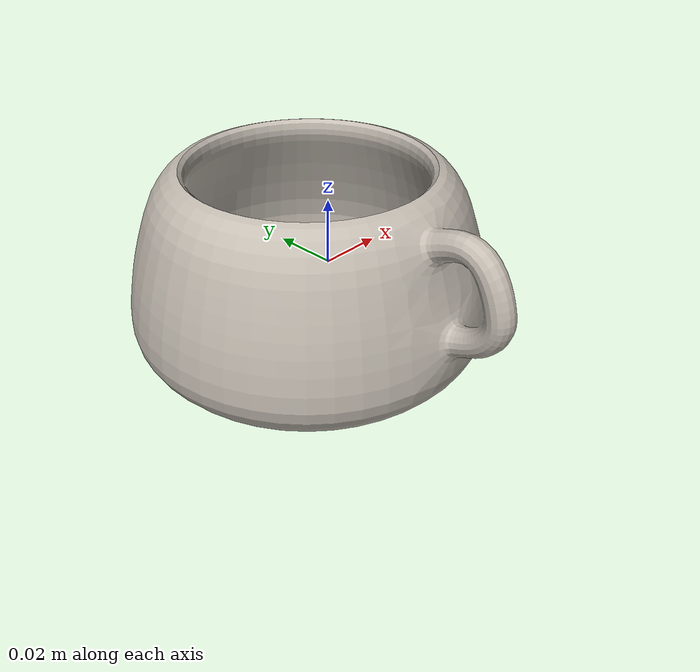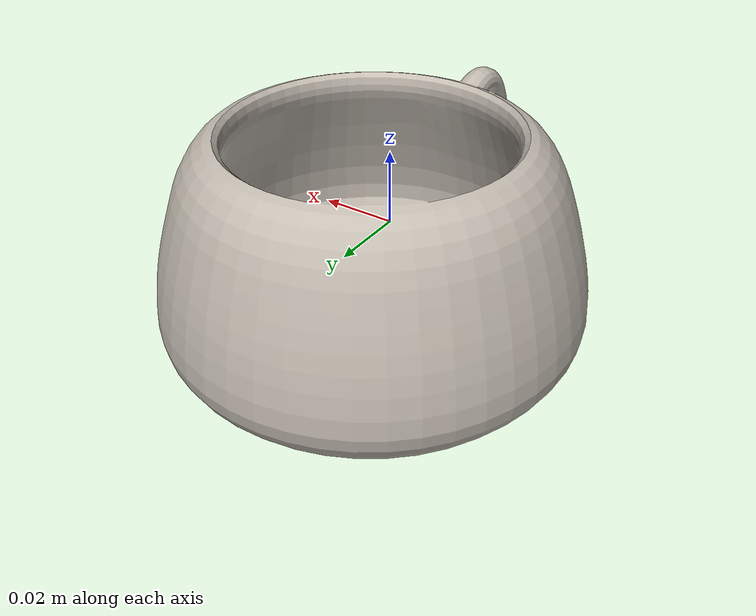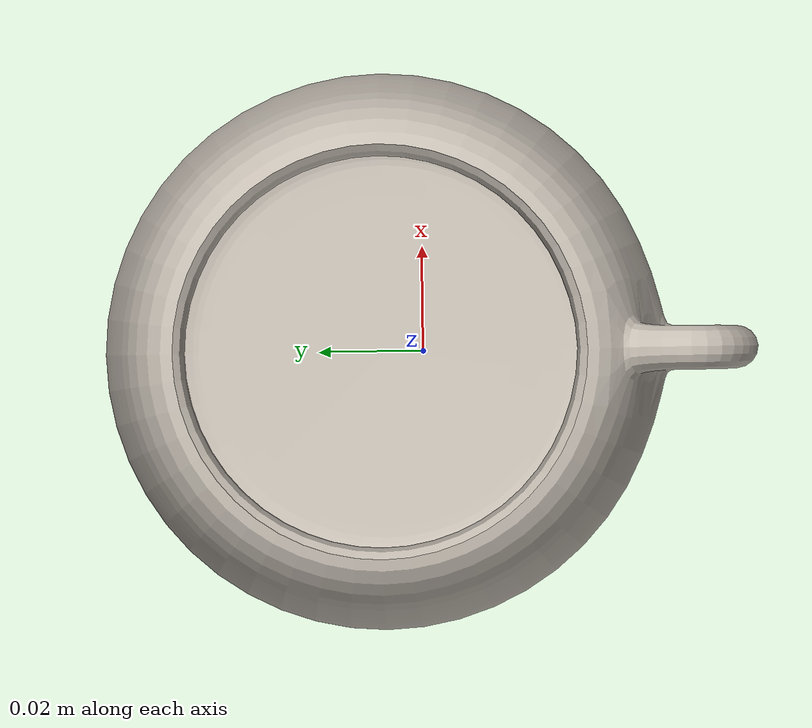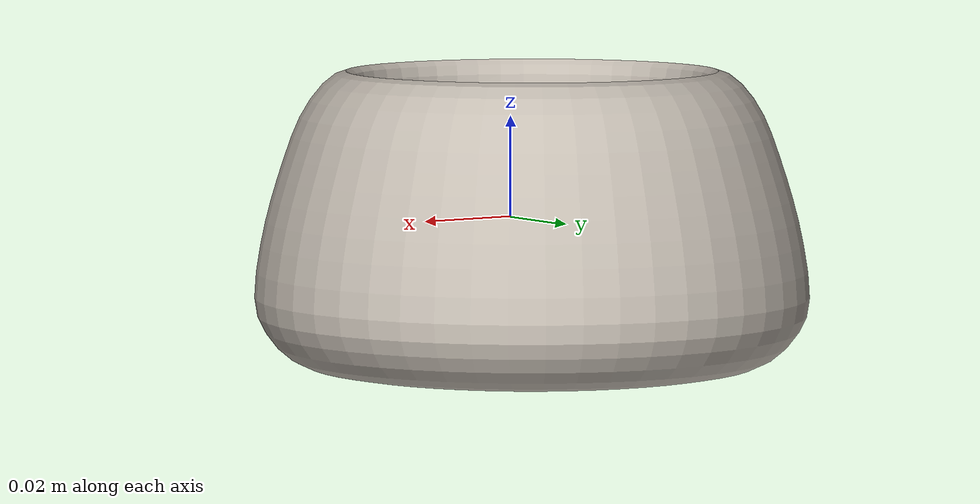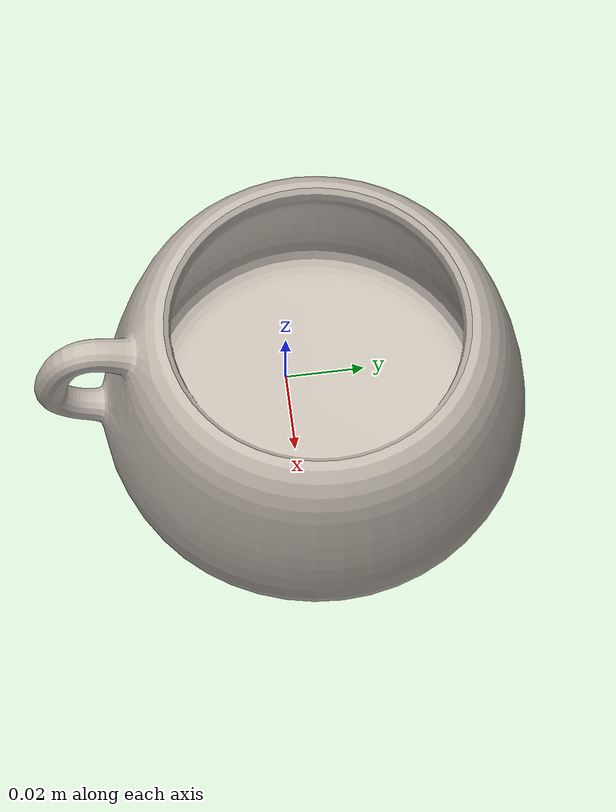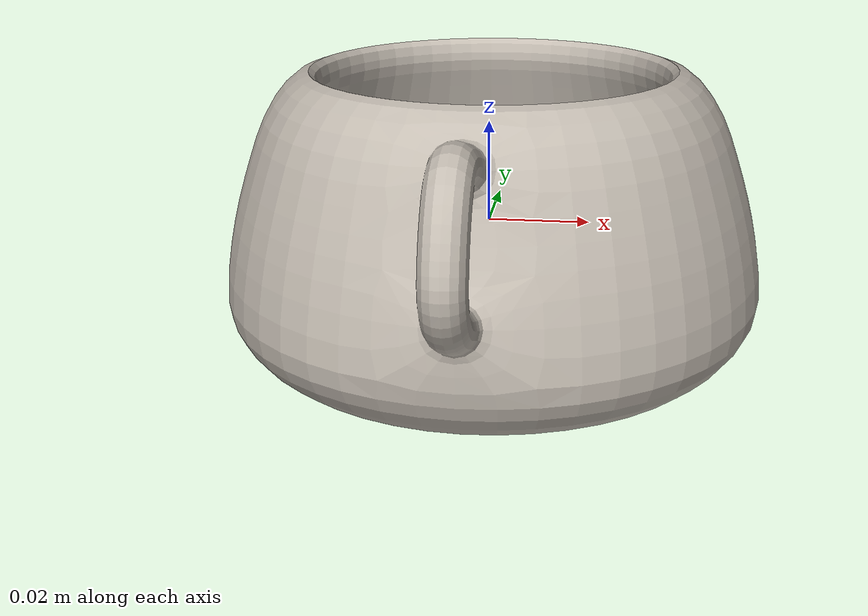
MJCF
<mujoco model="mug_0">
  <asset>
    <mesh file="visual/model_normalized_0.obj" name="mug_0_model_normalized_0_vis" scale="0.125 0.125 0.125" refquat="0.7071067811865475 0.0 0.0 0.7071067811865476" />
    <mesh file="visual/model_normalized_1.obj" name="mug_0_model_normalized_1_vis" scale="0.125 0.125 0.125" refquat="0.7071067811865475 0.0 0.0 0.7071067811865476" />
    <mesh file="collision/model_normalized_collision_22.obj" name="mug_0_model_normalized_collision_22._coll" scale="0.125 0.125 0.125" refquat="0.7071067811865475 0.0 0.0 0.7071067811865476" />
    <mesh file="collision/model_normalized_collision_23.obj" name="mug_0_model_normalized_collision_23._coll" scale="0.125 0.125 0.125" refquat="0.7071067811865475 0.0 0.0 0.7071067811865476" />
    <mesh file="collision/model_normalized_collision_21.obj" name="mug_0_model_normalized_collision_21._coll" scale="0.125 0.125 0.125" refquat="0.7071067811865475 0.0 0.0 0.7071067811865476" />
    <mesh file="collision/model_normalized_collision_20.obj" name="mug_0_model_normalized_collision_20._coll" scale="0.125 0.125 0.125" refquat="0.7071067811865475 0.0 0.0 0.7071067811865476" />
    <mesh file="collision/model_normalized_collision_24.obj" name="mug_0_model_normalized_collision_24._coll" scale="0.125 0.125 0.125" refquat="0.7071067811865475 0.0 0.0 0.7071067811865476" />
    <mesh file="collision/model_normalized_collision_30.obj" name="mug_0_model_normalized_collision_30._coll" scale="0.125 0.125 0.125" refquat="0.7071067811865475 0.0 0.0 0.7071067811865476" />
    <mesh file="collision/model_normalized_collision_18.obj" name="mug_0_model_normalized_collision_18._coll" scale="0.125 0.125 0.125" refquat="0.7071067811865475 0.0 0.0 0.7071067811865476" />
    <mesh file="collision/model_normalized_collision_19.obj" name="mug_0_model_normalized_collision_19._coll" scale="0.125 0.125 0.125" refquat="0.7071067811865475 0.0 0.0 0.7071067811865476" />
    <mesh file="collision/model_normalized_collision_31.obj" name="mug_0_model_normalized_collision_31._coll" scale="0.125 0.125 0.125" refquat="0.7071067811865475 0.0 0.0 0.7071067811865476" />
    <mesh file="collision/model_normalized_collision_25.obj" name="mug_0_model_normalized_collision_25._coll" scale="0.125 0.125 0.125" refquat="0.7071067811865475 0.0 0.0 0.7071067811865476" />
    <mesh file="collision/model_normalized_collision_27.obj" name="mug_0_model_normalized_collision_27._coll" scale="0.125 0.125 0.125" refquat="0.7071067811865475 0.0 0.0 0.7071067811865476" />
    <mesh file="collision/model_normalized_collision_26.obj" name="mug_0_model_normalized_collision_26._coll" scale="0.125 0.125 0.125" refquat="0.7071067811865475 0.0 0.0 0.7071067811865476" />
    <mesh file="collision/model_normalized_collision_9.obj" name="mug_0_model_normalized_collision_9._coll" scale="0.125 0.125 0.125" refquat="0.7071067811865475 0.0 0.0 0.7071067811865476" />
    <mesh file="collision/model_normalized_collision_8.obj" name="mug_0_model_normalized_collision_8._coll" scale="0.125 0.125 0.125" refquat="0.7071067811865475 0.0 0.0 0.7071067811865476" />
    <mesh file="collision/model_normalized_collision_6.obj" name="mug_0_model_normalized_collision_6._coll" scale="0.125 0.125 0.125" refquat="0.7071067811865475 0.0 0.0 0.7071067811865476" />
    <mesh file="collision/model_normalized_collision_7.obj" name="mug_0_model_normalized_collision_7._coll" scale="0.125 0.125 0.125" refquat="0.7071067811865475 0.0 0.0 0.7071067811865476" />
    <mesh file="collision/model_normalized_collision_5.obj" name="mug_0_model_normalized_collision_5._coll" scale="0.125 0.125 0.125" refquat="0.7071067811865475 0.0 0.0 0.7071067811865476" />
    <mesh file="collision/model_normalized_collision_4.obj" name="mug_0_model_normalized_collision_4._coll" scale="0.125 0.125 0.125" refquat="0.7071067811865475 0.0 0.0 0.7071067811865476" />
    <mesh file="collision/model_normalized_collision_0.obj" name="mug_0_model_normalized_collision_0._coll" scale="0.125 0.125 0.125" refquat="0.7071067811865475 0.0 0.0 0.7071067811865476" />
    <mesh file="collision/model_normalized_collision_1.obj" name="mug_0_model_normalized_collision_1._coll" scale="0.125 0.125 0.125" refquat="0.7071067811865475 0.0 0.0 0.7071067811865476" />
    <mesh file="collision/model_normalized_collision_3.obj" name="mug_0_model_normalized_collision_3._coll" scale="0.125 0.125 0.125" refquat="0.7071067811865475 0.0 0.0 0.7071067811865476" />
    <mesh file="collision/model_normalized_collision_2.obj" name="mug_0_model_normalized_collision_2._coll" scale="0.125 0.125 0.125" refquat="0.7071067811865475 0.0 0.0 0.7071067811865476" />
    <mesh file="collision/model_normalized_collision_17.obj" name="mug_0_model_normalized_collision_17._coll" scale="0.125 0.125 0.125" refquat="0.7071067811865475 0.0 0.0 0.7071067811865476" />
    <mesh file="collision/model_normalized_collision_16.obj" name="mug_0_model_normalized_collision_16._coll" scale="0.125 0.125 0.125" refquat="0.7071067811865475 0.0 0.0 0.7071067811865476" />
    <mesh file="collision/model_normalized_collision_28.obj" name="mug_0_model_normalized_collision_28._coll" scale="0.125 0.125 0.125" refquat="0.7071067811865475 0.0 0.0 0.7071067811865476" />
    <mesh file="collision/model_normalized_collision_14.obj" name="mug_0_model_normalized_collision_14._coll" scale="0.125 0.125 0.125" refquat="0.7071067811865475 0.0 0.0 0.7071067811865476" />
    <mesh file="collision/model_normalized_collision_15.obj" name="mug_0_model_normalized_collision_15._coll" scale="0.125 0.125 0.125" refquat="0.7071067811865475 0.0 0.0 0.7071067811865476" />
    <mesh file="collision/model_normalized_collision_29.obj" name="mug_0_model_normalized_collision_29._coll" scale="0.125 0.125 0.125" refquat="0.7071067811865475 0.0 0.0 0.7071067811865476" />
    <mesh file="collision/model_normalized_collision_11.obj" name="mug_0_model_normalized_collision_11._coll" scale="0.125 0.125 0.125" refquat="0.7071067811865475 0.0 0.0 0.7071067811865476" />
    <mesh file="collision/model_normalized_collision_10.obj" name="mug_0_model_normalized_collision_10._coll" scale="0.125 0.125 0.125" refquat="0.7071067811865475 0.0 0.0 0.7071067811865476" />
    <mesh file="collision/model_normalized_collision_12.obj" name="mug_0_model_normalized_collision_12._coll" scale="0.125 0.125 0.125" refquat="0.7071067811865475 0.0 0.0 0.7071067811865476" />
    <mesh file="collision/model_normalized_collision_13.obj" name="mug_0_model_normalized_collision_13._coll" scale="0.125 0.125 0.125" refquat="0.7071067811865475 0.0 0.0 0.7071067811865476" />
    <texture type="2d" name="mug_0_image0" file="visual/image0.png" />
    <material name="mug_0_lambert1.044" texture="mug_0_image0" specular="0.5" shininess="0.15999998099999999" />
    <material name="mug_0_phongE1.001" texture="mug_0_image0" specular="0.5" shininess="0.21634550200000002" />
  </asset>
  <worldbody>
    <body>
      <joint name="mug_0_object_joint" type="free" damping="1." /><body name="mug_0_object">
        <geom solimp="0.998 0.998 0.001" solref="0.001 1" density="300" friction="0.95 0.3 0.1" type="mesh" mesh="mug_0_model_normalized_0_vis" conaffinity="0" contype="0" group="1" material="mug_0_lambert1.044" />
        <geom solimp="0.998 0.998 0.001" solref="0.001 1" density="300" friction="0.95 0.3 0.1" type="mesh" mesh="mug_0_model_normalized_1_vis" conaffinity="0" contype="0" group="1" material="mug_0_phongE1.001" />
        <geom solimp="0.998 0.998 0.001" solref="0.001 1" density="300" friction="0.95 0.3 0.1" type="mesh" mesh="mug_0_model_normalized_collision_22._coll" group="0" rgba="0.8 0.8 0.8 0.0" />
        <geom solimp="0.998 0.998 0.001" solref="0.001 1" density="300" friction="0.95 0.3 0.1" type="mesh" mesh="mug_0_model_normalized_collision_23._coll" group="0" rgba="0.8 0.8 0.8 0.0" />
        <geom solimp="0.998 0.998 0.001" solref="0.001 1" density="300" friction="0.95 0.3 0.1" type="mesh" mesh="mug_0_model_normalized_collision_21._coll" group="0" rgba="0.8 0.8 0.8 0.0" />
        <geom solimp="0.998 0.998 0.001" solref="0.001 1" density="300" friction="0.95 0.3 0.1" type="mesh" mesh="mug_0_model_normalized_collision_20._coll" group="0" rgba="0.8 0.8 0.8 0.0" />
        <geom solimp="0.998 0.998 0.001" solref="0.001 1" density="300" friction="0.95 0.3 0.1" type="mesh" mesh="mug_0_model_normalized_collision_24._coll" group="0" rgba="0.8 0.8 0.8 0.0" />
        <geom solimp="0.998 0.998 0.001" solref="0.001 1" density="300" friction="0.95 0.3 0.1" type="mesh" mesh="mug_0_model_normalized_collision_30._coll" group="0" rgba="0.8 0.8 0.8 0.0" />
        <geom solimp="0.998 0.998 0.001" solref="0.001 1" density="300" friction="0.95 0.3 0.1" type="mesh" mesh="mug_0_model_normalized_collision_18._coll" group="0" rgba="0.8 0.8 0.8 0.0" />
        <geom solimp="0.998 0.998 0.001" solref="0.001 1" density="300" friction="0.95 0.3 0.1" type="mesh" mesh="mug_0_model_normalized_collision_19._coll" group="0" rgba="0.8 0.8 0.8 0.0" />
        <geom solimp="0.998 0.998 0.001" solref="0.001 1" density="300" friction="0.95 0.3 0.1" type="mesh" mesh="mug_0_model_normalized_collision_31._coll" group="0" rgba="0.8 0.8 0.8 0.0" />
        <geom solimp="0.998 0.998 0.001" solref="0.001 1" density="300" friction="0.95 0.3 0.1" type="mesh" mesh="mug_0_model_normalized_collision_25._coll" group="0" rgba="0.8 0.8 0.8 0.0" />
        <geom solimp="0.998 0.998 0.001" solref="0.001 1" density="300" friction="0.95 0.3 0.1" type="mesh" mesh="mug_0_model_normalized_collision_27._coll" group="0" rgba="0.8 0.8 0.8 0.0" />
        <geom solimp="0.998 0.998 0.001" solref="0.001 1" density="300" friction="0.95 0.3 0.1" type="mesh" mesh="mug_0_model_normalized_collision_26._coll" group="0" rgba="0.8 0.8 0.8 0.0" />
        <geom solimp="0.998 0.998 0.001" solref="0.001 1" density="300" friction="0.95 0.3 0.1" type="mesh" mesh="mug_0_model_normalized_collision_9._coll" group="0" rgba="0.8 0.8 0.8 0.0" />
        <geom solimp="0.998 0.998 0.001" solref="0.001 1" density="300" friction="0.95 0.3 0.1" type="mesh" mesh="mug_0_model_normalized_collision_8._coll" group="0" rgba="0.8 0.8 0.8 0.0" />
        <geom solimp="0.998 0.998 0.001" solref="0.001 1" density="300" friction="0.95 0.3 0.1" type="mesh" mesh="mug_0_model_normalized_collision_6._coll" group="0" rgba="0.8 0.8 0.8 0.0" />
        <geom solimp="0.998 0.998 0.001" solref="0.001 1" density="300" friction="0.95 0.3 0.1" type="mesh" mesh="mug_0_model_normalized_collision_7._coll" group="0" rgba="0.8 0.8 0.8 0.0" />
        <geom solimp="0.998 0.998 0.001" solref="0.001 1" density="300" friction="0.95 0.3 0.1" type="mesh" mesh="mug_0_model_normalized_collision_5._coll" group="0" rgba="0.8 0.8 0.8 0.0" />
        <geom solimp="0.998 0.998 0.001" solref="0.001 1" density="300" friction="0.95 0.3 0.1" type="mesh" mesh="mug_0_model_normalized_collision_4._coll" group="0" rgba="0.8 0.8 0.8 0.0" />
        <geom solimp="0.998 0.998 0.001" solref="0.001 1" density="300" friction="0.95 0.3 0.1" type="mesh" mesh="mug_0_model_normalized_collision_0._coll" group="0" rgba="0.8 0.8 0.8 0.0" />
        <geom solimp="0.998 0.998 0.001" solref="0.001 1" density="300" friction="0.95 0.3 0.1" type="mesh" mesh="mug_0_model_normalized_collision_1._coll" group="0" rgba="0.8 0.8 0.8 0.0" />
        <geom solimp="0.998 0.998 0.001" solref="0.001 1" density="300" friction="0.95 0.3 0.1" type="mesh" mesh="mug_0_model_normalized_collision_3._coll" group="0" rgba="0.8 0.8 0.8 0.0" />
        <geom solimp="0.998 0.998 0.001" solref="0.001 1" density="300" friction="0.95 0.3 0.1" type="mesh" mesh="mug_0_model_normalized_collision_2._coll" group="0" rgba="0.8 0.8 0.8 0.0" />
        <geom solimp="0.998 0.998 0.001" solref="0.001 1" density="300" friction="0.95 0.3 0.1" type="mesh" mesh="mug_0_model_normalized_collision_17._coll" group="0" rgba="0.8 0.8 0.8 0.0" />
        <geom solimp="0.998 0.998 0.001" solref="0.001 1" density="300" friction="0.95 0.3 0.1" type="mesh" mesh="mug_0_model_normalized_collision_16._coll" group="0" rgba="0.8 0.8 0.8 0.0" />
        <geom solimp="0.998 0.998 0.001" solref="0.001 1" density="300" friction="0.95 0.3 0.1" type="mesh" mesh="mug_0_model_normalized_collision_28._coll" group="0" rgba="0.8 0.8 0.8 0.0" />
        <geom solimp="0.998 0.998 0.001" solref="0.001 1" density="300" friction="0.95 0.3 0.1" type="mesh" mesh="mug_0_model_normalized_collision_14._coll" group="0" rgba="0.8 0.8 0.8 0.0" />
        <geom solimp="0.998 0.998 0.001" solref="0.001 1" density="300" friction="0.95 0.3 0.1" type="mesh" mesh="mug_0_model_normalized_collision_15._coll" group="0" rgba="0.8 0.8 0.8 0.0" />
        <geom solimp="0.998 0.998 0.001" solref="0.001 1" density="300" friction="0.95 0.3 0.1" type="mesh" mesh="mug_0_model_normalized_collision_29._coll" group="0" rgba="0.8 0.8 0.8 0.0" />
        <geom solimp="0.998 0.998 0.001" solref="0.001 1" density="300" friction="0.95 0.3 0.1" type="mesh" mesh="mug_0_model_normalized_collision_11._coll" group="0" rgba="0.8 0.8 0.8 0.0" />
        <geom solimp="0.998 0.998 0.001" solref="0.001 1" density="300" friction="0.95 0.3 0.1" type="mesh" mesh="mug_0_model_normalized_collision_10._coll" group="0" rgba="0.8 0.8 0.8 0.0" />
        <geom solimp="0.998 0.998 0.001" solref="0.001 1" density="300" friction="0.95 0.3 0.1" type="mesh" mesh="mug_0_model_normalized_collision_12._coll" group="0" rgba="0.8 0.8 0.8 0.0" />
        <geom solimp="0.998 0.998 0.001" solref="0.001 1" density="300" friction="0.95 0.3 0.1" type="mesh" mesh="mug_0_model_normalized_collision_13._coll" group="0" rgba="0.8 0.8 0.8 0.0" />
      </body>

    </body>
  </worldbody>
</mujoco>
